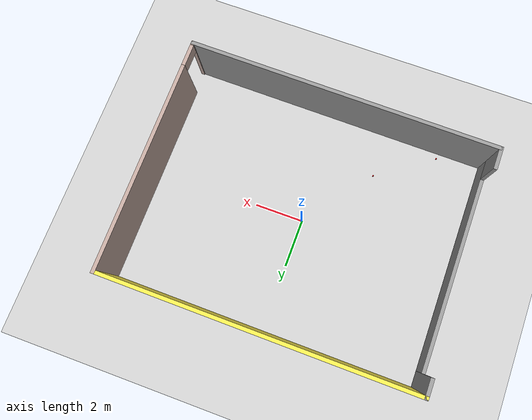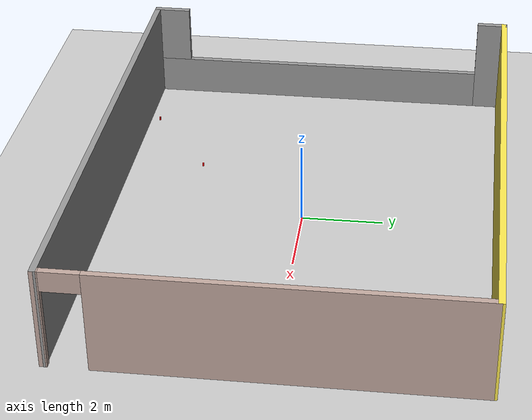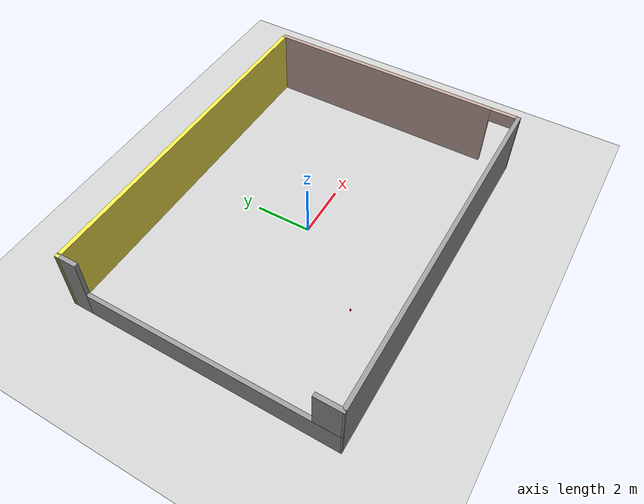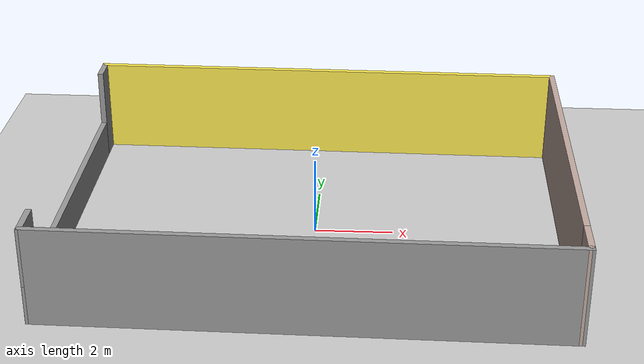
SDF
<sdf version="1.6">
 <world name="default">
  <model name="ground_plane">
   <static>1</static>
   <link name="link">
    <collision name="collision">
     <geometry><plane><normal>0 0 1</normal><size>100 100</size></plane></geometry>
     <surface><friction><ode><mu>100</mu><mu2>50</mu2></ode></friction></surface>
    </collision>
    <visual name="visual">
     <cast_shadows>0</cast_shadows>
     <geometry><plane><normal>0 0 1</normal><size>100 100</size></plane></geometry>
     <material>
      <script><uri>file://media/materials/scripts/gazebo.material</uri><name>Gazebo/Grey</name></script>
     </material>
    </visual>
   </link>
  </model>
  <model name="lab404">
   <pose>0 -0.00917 0 0 -0 0</pose>
   <link name="Wall_0">
    <collision name="Wall_0_Collision">
     <geometry><box><size>12.8011 0.15 2.5</size></box></geometry>
     <pose>0 0 1.25 0 -0 0</pose>
    </collision>
    <visual name="Wall_0_Visual">
     <pose>0 0 1.25 0 -0 0</pose>
     <geometry><box><size>12.8011 0.15 2.5</size></box></geometry>
     <material>
      <script><uri>file://media/materials/scripts/gazebo.material</uri><name>Gazebo/Grey</name></script>
      <ambient>1 1 1 1</ambient>
     </material>
     <meta><layer>0</layer></meta>
    </visual>
    <pose>0 -4.8 0 0 -0 -0.007114</pose>
   </link>
   <link name="Wall_1">
    <pose>6.3255 -0.045 0 0 -0 1.5708</pose>
    <visual name="Wall_1_Visual_0">
     <pose>-4.78382 0 1.25 0 -0 0</pose>
     <geometry><box><size>0.182364 0.15 2.5</size></box></geometry>
     <material>
      <script><uri>file://media/materials/scripts/gazebo.material</uri><name>Gazebo/Grey</name></script>
      <ambient>0.760784 0.662745 0.627451 1</ambient>
     </material>
     <meta><layer>0</layer></meta>
    </visual>
    <collision name="Wall_1_Collision_0">
     <geometry><box><size>0.182364 0.15 2.5</size></box></geometry>
     <pose>-4.78382 0 1.25 0 -0 0</pose>
    </collision>
    <visual name="Wall_1_Visual_1">
     <pose>0.541182 0 1.25 0 -0 0</pose>
     <geometry><box><size>8.66764 0.15 2.5</size></box></geometry>
     <material>
      <script><uri>file://media/materials/scripts/gazebo.material</uri><name>Gazebo/Grey</name></script>
      <ambient>0.760784 0.662745 0.627451 1</ambient>
     </material>
     <meta><layer>0</layer></meta>
    </visual>
    <collision name="Wall_1_Collision_1">
     <geometry><box><size>8.66764 0.15 2.5</size></box></geometry>
     <pose>0.541182 0 1.25 0 -0 0</pose>
    </collision>
    <visual name="Wall_1_Visual_2">
     <pose>-4.24264 0 2.25 0 -0 0</pose>
     <geometry><box><size>0.9 0.15 0.5</size></box></geometry>
     <material>
      <script><uri>file://media/materials/scripts/gazebo.material</uri><name>Gazebo/Grey</name></script>
      <ambient>0.760784 0.662745 0.627451 1</ambient>
     </material>
     <meta><layer>0</layer></meta>
    </visual>
    <collision name="Wall_1_Collision_2">
     <geometry><box><size>0.9 0.15 0.5</size></box></geometry>
     <pose>-4.24264 0 2.25 0 -0 0</pose>
    </collision>
   </link>
   <link name="Wall_2">
    <collision name="Wall_2_Collision">
     <geometry><box><size>12.8011 0.15 2.5</size></box></geometry>
     <pose>0 0 1.25 0 -0 0</pose>
    </collision>
    <visual name="Wall_2_Visual">
     <pose>0 0 1.25 0 -0 0</pose>
     <geometry><box><size>12.8011 0.15 2.5</size></box></geometry>
     <material>
      <script><uri>file://media/materials/scripts/gazebo.material</uri><name>Gazebo/Grey</name></script>
      <ambient>0.988235 0.913725 0.309804 1</ambient>
     </material>
     <meta><layer>0</layer></meta>
    </visual>
    <pose>0 4.8 0 0 -0 3.13448</pose>
   </link>
   <link name="Wall_3">
    <pose>-6.3255 0.045 0 0 -0 -1.5708</pose>
    <visual name="Wall_3_Visual_0">
     <pose>-4.47804 0 1.25 0 -0 0</pose>
     <geometry><box><size>0.793928 0.15 2.5</size></box></geometry>
     <material>
      <script><uri>file://media/materials/scripts/gazebo.material</uri><name>Gazebo/Grey</name></script>
      <ambient>1 1 1 1</ambient>
     </material>
     <meta><layer>0</layer></meta>
    </visual>
    <collision name="Wall_3_Collision_0">
     <geometry><box><size>0.793928 0.15 2.5</size></box></geometry>
     <pose>-4.47804 0 1.25 0 -0 0</pose>
    </collision>
    <visual name="Wall_3_Visual_1">
     <pose>0.396964 0 0.5 0 -0 0</pose>
     <geometry><box><size>8.95607 0.15 1</size></box></geometry>
     <material>
      <script><uri>file://media/materials/scripts/gazebo.material</uri><name>Gazebo/Grey</name></script>
      <ambient>1 1 1 1</ambient>
     </material>
     <meta><layer>0</layer></meta>
    </visual>
    <collision name="Wall_3_Collision_1">
     <geometry><box><size>8.95607 0.15 1</size></box></geometry>
     <pose>0.396964 0 0.5 0 -0 0</pose>
    </collision>
    <visual name="Wall_3_Visual_2">
     <pose>4.39696 0 1.75 0 -0 0</pose>
     <geometry><box><size>0.956072 0.15 1.5</size></box></geometry>
     <material>
      <script><uri>file://media/materials/scripts/gazebo.material</uri><name>Gazebo/Grey</name></script>
      <ambient>1 1 1 1</ambient>
     </material>
     <meta><layer>0</layer></meta>
    </visual>
    <collision name="Wall_3_Collision_2">
     <geometry><box><size>0.956072 0.15 1.5</size></box></geometry>
     <pose>4.39696 0 1.75 0 -0 0</pose>
    </collision>
   </link>
   <static>1</static>
  </model>
  <model name="wood_cube_5cm_clone_clone_1">
   <link name="link">
    <pose>0 0 0.025 0 -0 0</pose>
    <inertial>
     <mass>0.02</mass>
     <inertia>
      <ixx>2.35417e-05</ixx>
      <ixy>0</ixy>
      <ixz>0</ixz>
      <iyy>2.35417e-05</iyy>
      <iyz>0</iyz>
      <izz>2.35417e-05</izz>
     </inertia>
    </inertial>
    <collision name="collision">
     <geometry><box><size>0.04 0.04 0.08</size></box></geometry>
     <surface>
      <contact>
       <poissons_ratio>0.347</poissons_ratio>
       <elastic_modulus>8.8e+09</elastic_modulus>
       <ode><kp>100000</kp><kd>1</kd><max_vel>1</max_vel><min_depth>0.001</min_depth></ode>
      </contact>
      <friction>
       <torsional>
        <coefficient>1</coefficient>
        <use_patch_radius>0</use_patch_radius>
        <surface_radius>0.05</surface_radius>
       </torsional>
      </friction>
     </surface>
    </collision>
    <visual name="visual">
     <geometry><box><size>0.04 0.04 0.08</size></box></geometry>
     <material>
      <ambient>1 0 0 1</ambient>
      <diffuse>1 0 0 1</diffuse>
      <script><uri>file://media/materials/scripts/gazebo.material</uri><name>Gazebo/Grey</name></script>
     </material>
    </visual>
   </link>
   <pose>-2.17279 -2.8555 0.014 0 -0 0</pose>
  </model>
  <model name="wood_cube_5cm_clone_clone_4">
   <link name="link">
    <pose>0 0 0.025 0 -0 0</pose>
    <inertial>
     <mass>0.02</mass>
     <inertia>
      <ixx>2.35417e-05</ixx>
      <ixy>0</ixy>
      <ixz>0</ixz>
      <iyy>2.35417e-05</iyy>
      <iyz>0</iyz>
      <izz>2.35417e-05</izz>
     </inertia>
    </inertial>
    <collision name="collision">
     <geometry><box><size>0.04 0.04 0.08</size></box></geometry>
     <surface>
      <contact>
       <poissons_ratio>0.347</poissons_ratio>
       <elastic_modulus>8.8e+09</elastic_modulus>
       <ode><kp>100000</kp><kd>1</kd><max_vel>1</max_vel><min_depth>0.001</min_depth></ode>
      </contact>
      <friction>
       <torsional>
        <coefficient>1</coefficient>
        <use_patch_radius>0</use_patch_radius>
        <surface_radius>0.05</surface_radius>
       </torsional>
      </friction>
     </surface>
    </collision>
    <visual name="visual">
     <geometry><box><size>0.04 0.04 0.08</size></box></geometry>
     <material>
      <ambient>1 0 0 1</ambient>
      <diffuse>1 0 0 1</diffuse>
      <script><uri>file://media/materials/scripts/gazebo.material</uri><name>Gazebo/Grey</name></script>
     </material>
    </visual>
   </link>
   <pose>-4.45912 -4.46628 0.014 0 -0 0</pose>
  </model>
 </world>
</sdf>
